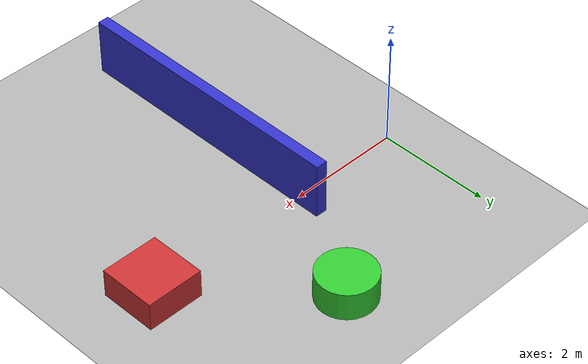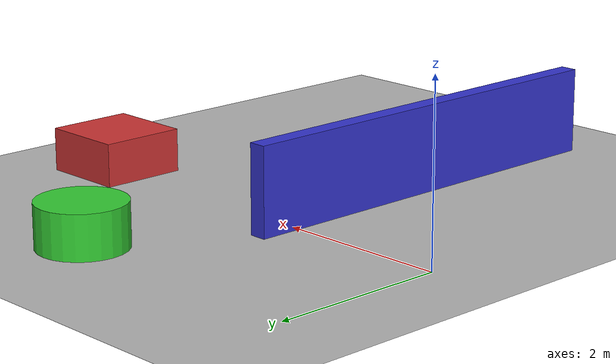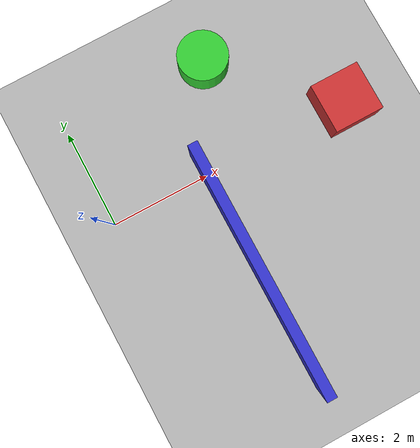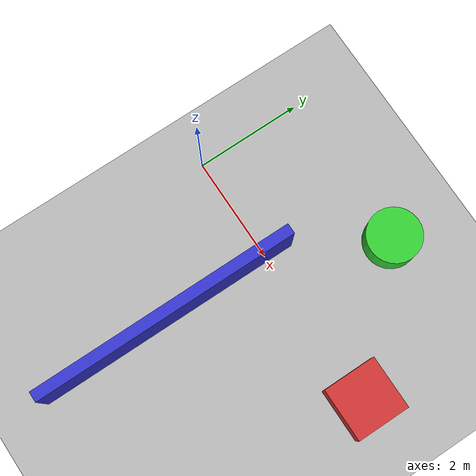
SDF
<?xml version="1.0"?>
<sdf version="1.6">
  <world name="obstacle_world">
    <!-- Light -->
    <light type="directional" name="sun">
      <cast_shadows>1</cast_shadows>
      <pose>0 0 10 0 0 0</pose>
      <diffuse>0.8 0.8 0.8 1</diffuse>
      <specular>0.2 0.2 0.2 1</specular>
      <attenuation>
        <range>1000</range>
        <constant>0.9</constant>
        <linear>0.01</linear>
        <quadratic>0.001</quadratic>
      </attenuation>
      <direction>-0.5 0.1 -0.9</direction>
    </light>

    <!-- Ground plane -->
    <model name="ground_plane">
      <static>true</static>
      <link name="link">
        <collision name="collision">
          <geometry>
            <plane>
              <normal>0 0 1</normal>
              <size>100 100</size>
            </plane>
          </geometry>
        </collision>
        <visual name="visual">
          <geometry>
            <plane>
              <normal>0 0 1</normal>
              <size>100 100</size>
            </plane>
          </geometry>
          <material>
            <ambient>0.3 0.3 0.3 1</ambient>
            <diffuse>0.7 0.7 0.7 1</diffuse>
          </material>
        </visual>
      </link>
    </model>

    <!-- Obstacle 1: Box -->
    <model name="obstacle_box_1">
      <pose>5 0 0.25 0 0 0</pose>
      <link name="link">
        <collision name="collision">
          <geometry>
            <box>
              <size>1 1 0.5</size>
            </box>
          </geometry>
        </collision>
        <visual name="visual">
          <geometry>
            <box>
              <size>1 1 0.5</size>
            </box>
          </geometry>
          <material>
            <ambient>0.8 0.2 0.2 1</ambient>
            <diffuse>0.8 0.2 0.2 1</diffuse>
          </material>
        </visual>
      </link>
    </model>

    <!-- Obstacle 2: Cylinder -->
    <model name="obstacle_cylinder_1">
      <pose>3 2 0.25 0 0 0</pose>
      <link name="link">
        <collision name="collision">
          <geometry>
            <cylinder>
              <radius>0.5</radius>
              <length>0.5</length>
            </cylinder>
          </geometry>
        </collision>
        <visual name="visual">
          <geometry>
            <cylinder>
              <radius>0.5</radius>
              <length>0.5</length>
            </cylinder>
          </geometry>
          <material>
            <ambient>0.2 0.8 0.2 1</ambient>
            <diffuse>0.2 0.8 0.2 1</diffuse>
          </material>
        </visual>
      </link>
    </model>

    <!-- Obstacle 3: Wall -->
    <model name="obstacle_wall_1">
      <pose>2 -2 0.5 0 0 1.57</pose>
      <link name="link">
        <collision name="collision">
          <geometry>
            <box>
              <size>5 0.2 1</size>
            </box>
          </geometry>
        </collision>
        <visual name="visual">
          <geometry>
            <box>
              <size>5 0.2 1</size>
            </box>
          </geometry>
          <material>
            <ambient>0.2 0.2 0.8 1</ambient>
            <diffuse>0.2 0.2 0.8 1</diffuse>
          </material>
        </visual>
      </link>
    </model>

    <physics type="ode">
      <max_step_size>0.001</max_step_size>
      <real_time_factor>1</real_time_factor>
    </physics>
  </world>
</sdf>
